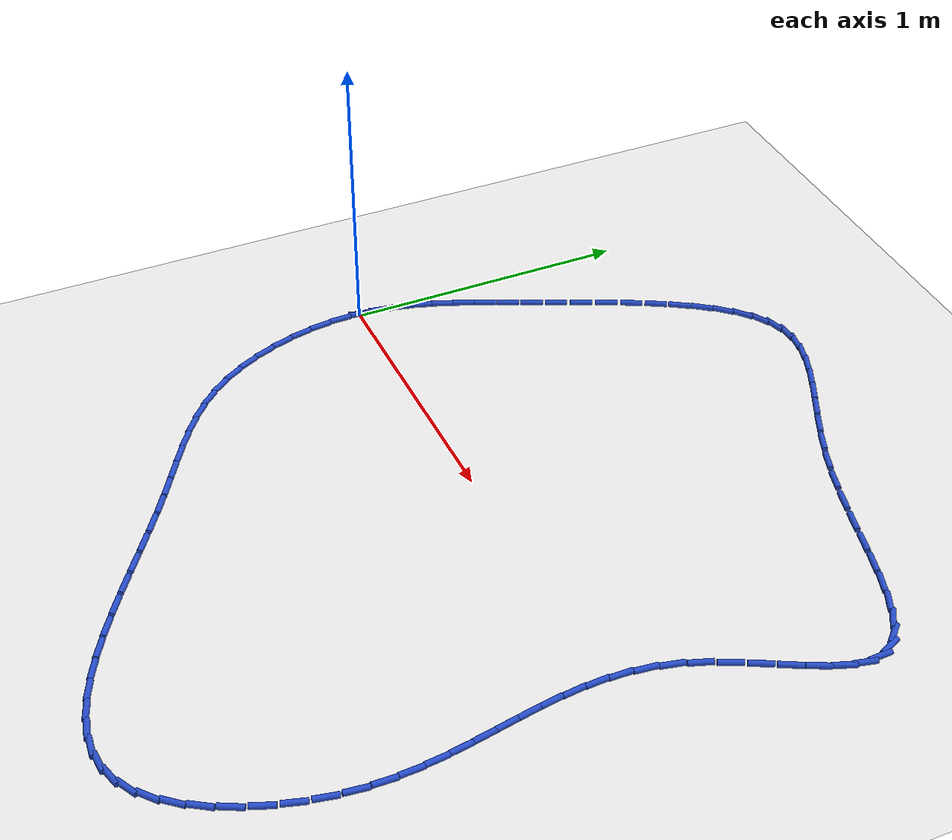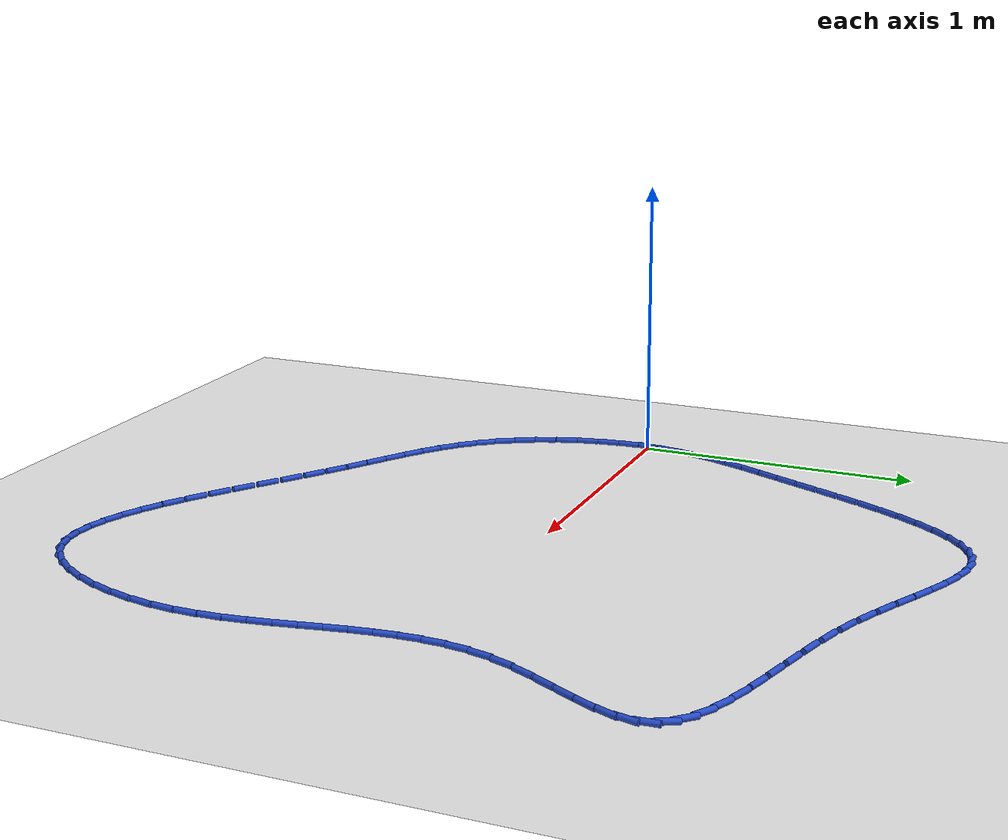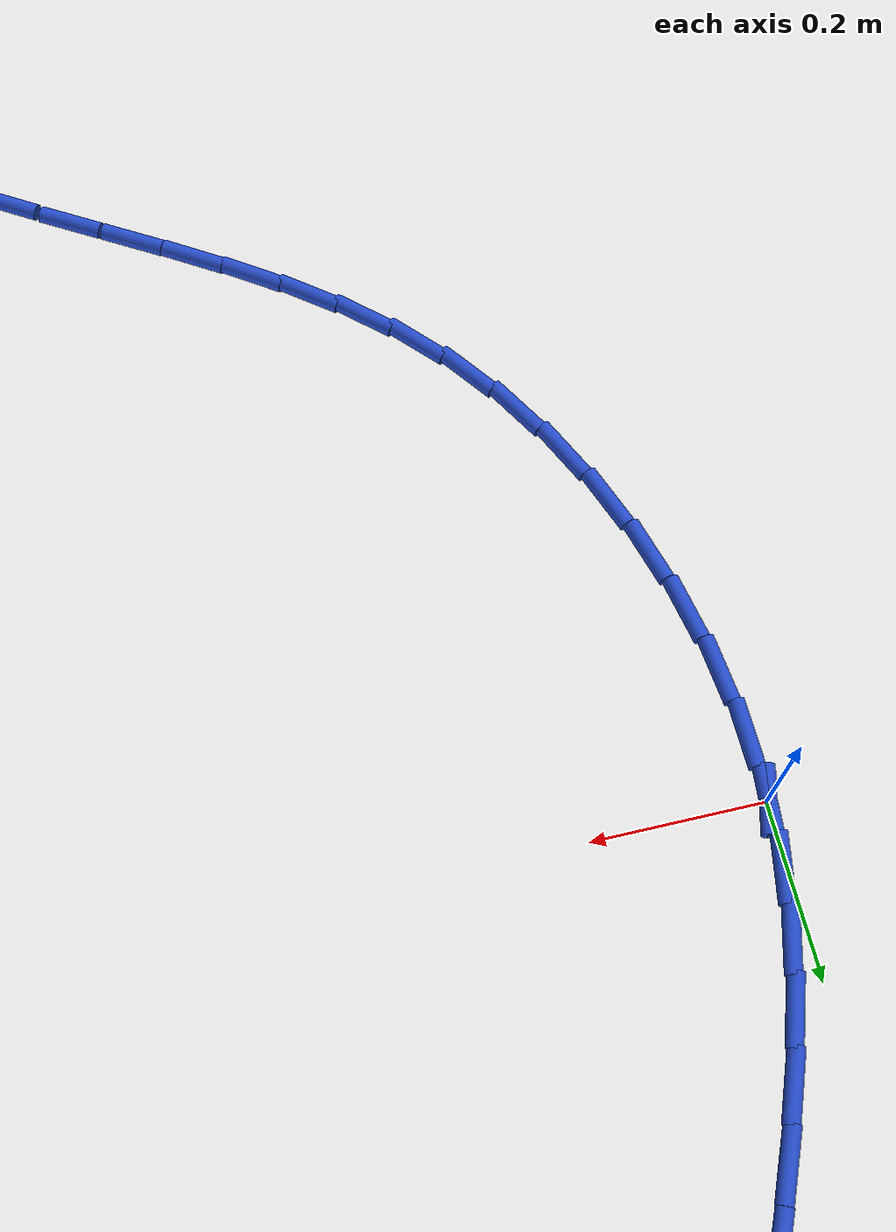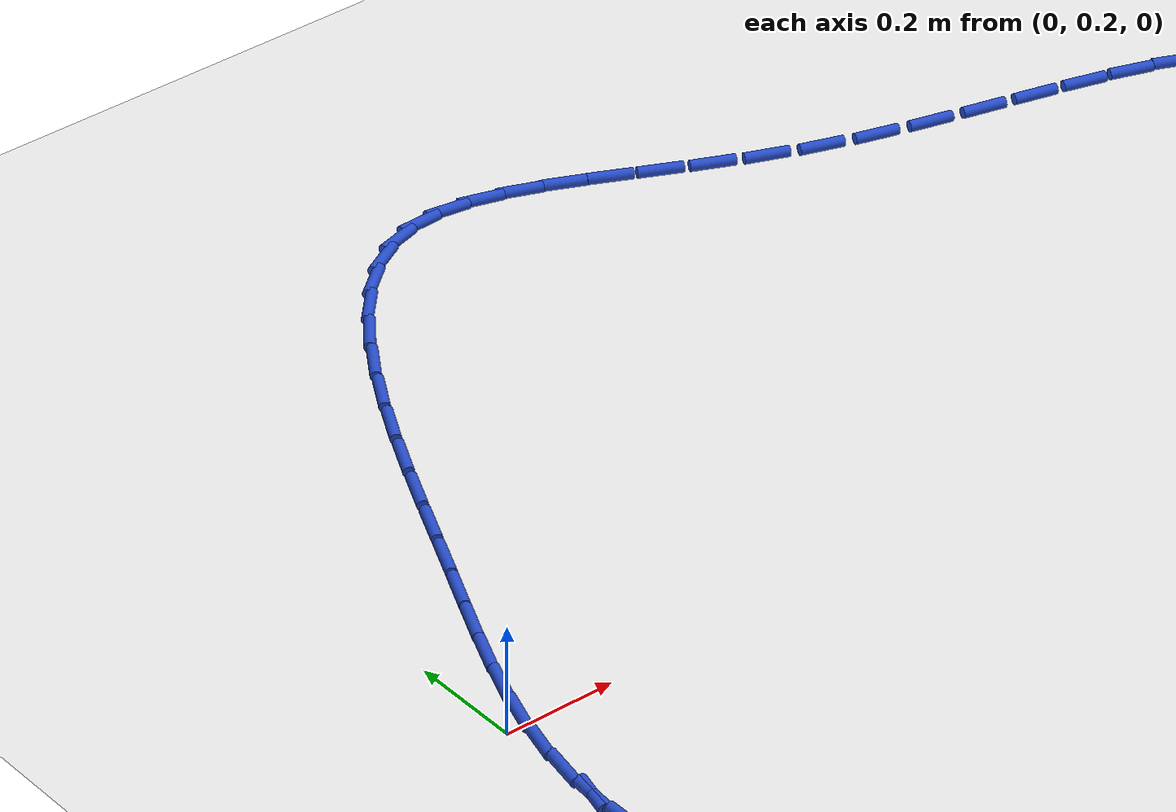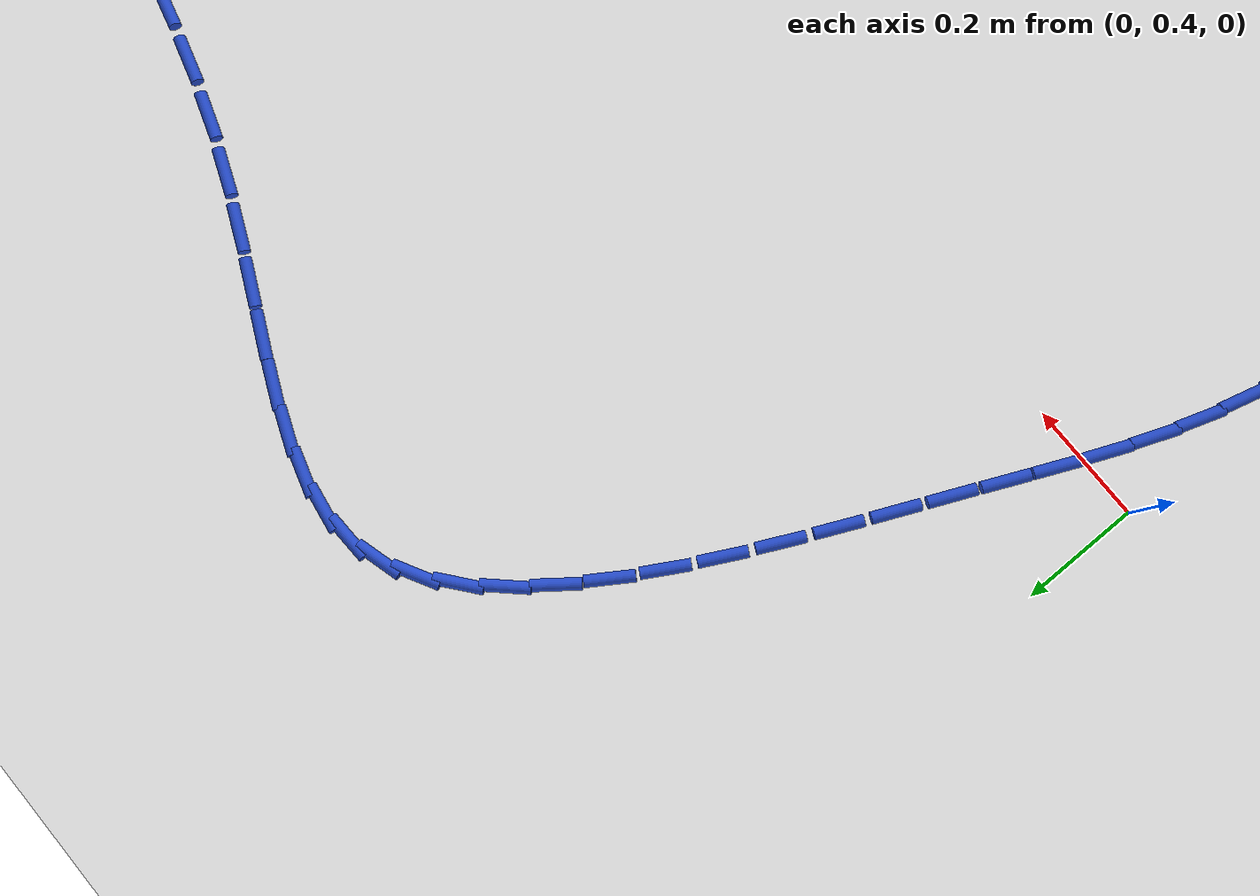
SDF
<sdf version="1.6">
 <world name="default">
  <light name="sun" type="directional">
   <pose>0 0 10 0 -0 0</pose>
   <diffuse>0.8 0.8 0.8 1</diffuse>
   <specular>0.2 0.2 0.2 1</specular>
   <attenuation>
    <range>1000</range>
    <constant>0.9</constant>
    <linear>0.01</linear>
    <quadratic>0.001</quadratic>
   </attenuation>
   <direction>-0.5 0.1 -0.9</direction>
  </light>
  <model name="ground_plane">
   <static>1</static>
   <link name="link">
    <collision name="collision">
     <geometry><plane><normal>0 0 1</normal><size>100 100</size></plane></geometry>
     <surface><friction><ode><mu>100</mu><mu2>50</mu2></ode></friction></surface>
    </collision>
    <visual name="visual">
     <cast_shadows>0</cast_shadows>
     <geometry><plane><normal>0 0 1</normal><size>100 100</size></plane></geometry>
     <material>
      <script><uri>file://media/materials/scripts/gazebo.material</uri><name>Gazebo/WhiteGlow</name></script>
     </material>
    </visual>
   </link>
  </model>
  <gravity>0 0 -9.8</gravity>
  <magnetic_field>6e-06 2.3e-05 -4.2e-05</magnetic_field>
  <atmosphere type="adiabatic"/>
  <physics name="default_physics" default="0" type="ode">
   <max_step_size>0.001</max_step_size>
   <real_time_factor>1</real_time_factor>
   <real_time_update_rate>1000</real_time_update_rate>
  </physics>
  <scene><ambient>0.4 0.4 0.4 1</ambient><background>0.7 0.7 0.7 1</background><shadows>1</shadows></scene>
  <spherical_coordinates>
   <surface_model>EARTH_WGS84</surface_model>
   <latitude_deg>0</latitude_deg>
   <longitude_deg>0</longitude_deg>
   <elevation>0</elevation>
   <heading_deg>0</heading_deg>
  </spherical_coordinates>
  <model name="line">
   <link name="link_0">
    <pose>1.1102230246251565e-16 6.938893903907228e-17 0.01 0 1.57 1.4840026987641841</pose>
    <collision name="collision">
     <geometry><cylinder><radius>0.01</radius><length>0.08</length></cylinder></geometry>
    </collision>
    <visual name="visual">
     <material>
      <script><name>Gazebo/Blue</name><uri>file://media/materials/scripts/gazebo.material</uri></script>
     </material>
     <geometry><cylinder><radius>0.01</radius><length>0.08</length></cylinder></geometry>
    </visual>
   </link>
   <link name="link_1">
    <pose>0.0065612767261310646 0.07540637412936897 0.01 0 1.57 1.3910932126338593</pose>
    <collision name="collision">
     <geometry><cylinder><radius>0.01</radius><length>0.08</length></cylinder></geometry>
    </collision>
    <visual name="visual">
     <material>
      <script><name>Gazebo/Blue</name><uri>file://media/materials/scripts/gazebo.material</uri></script>
     </material>
     <geometry><cylinder><radius>0.01</radius><length>0.08</length></cylinder></geometry>
    </visual>
   </link>
   <link name="link_2">
    <pose>0.01992770253627786 0.14898458428480577 0.01 0 1.57 1.3107194963642217</pose>
    <collision name="collision">
     <geometry><cylinder><radius>0.01</radius><length>0.08</length></cylinder></geometry>
    </collision>
    <visual name="visual">
     <material>
      <script><name>Gazebo/Blue</name><uri>file://media/materials/scripts/gazebo.material</uri></script>
     </material>
     <geometry><cylinder><radius>0.01</radius><length>0.08</length></cylinder></geometry>
    </visual>
   </link>
   <link name="link_3">
    <pose>0.039219704869234956 0.22148261527997679 0.01 0 1.57 1.2455239549286887</pose>
    <collision name="collision">
     <geometry><cylinder><radius>0.01</radius><length>0.08</length></cylinder></geometry>
    </collision>
    <visual name="visual">
     <material>
      <script><name>Gazebo/Blue</name><uri>file://media/materials/scripts/gazebo.material</uri></script>
     </material>
     <geometry><cylinder><radius>0.01</radius><length>0.08</length></cylinder></geometry>
    </visual>
   </link>
   <link name="link_4">
    <pose>0.06355771116379687 0.2936484519285486 0.01 0 1.57 1.1965793613125681</pose>
    <collision name="collision">
     <geometry><cylinder><radius>0.01</radius><length>0.08</length></cylinder></geometry>
    </collision>
    <visual name="visual">
     <material>
      <script><name>Gazebo/Blue</name><uri>file://media/materials/scripts/gazebo.material</uri></script>
     </material>
     <geometry><cylinder><radius>0.01</radius><length>0.08</length></cylinder></geometry>
    </visual>
   </link>
   <link name="link_5">
    <pose>0.09206214885875803 0.36623007904418764 0.01 0 1.57 1.1637742523363146</pose>
    <collision name="collision">
     <geometry><cylinder><radius>0.01</radius><length>0.08</length></cylinder></geometry>
    </collision>
    <visual name="visual">
     <material>
      <script><name>Gazebo/Blue</name><uri>file://media/materials/scripts/gazebo.material</uri></script>
     </material>
     <geometry><cylinder><radius>0.01</radius><length>0.08</length></cylinder></geometry>
    </visual>
   </link>
   <link name="link_6">
    <pose>0.12385344539291293 0.43997548144056015 0.01 0 1.57 1.1462634837776524</pose>
    <collision name="collision">
     <geometry><cylinder><radius>0.01</radius><length>0.08</length></cylinder></geometry>
    </collision>
    <visual name="visual">
     <material>
      <script><name>Gazebo/Blue</name><uri>file://media/materials/scripts/gazebo.material</uri></script>
     </material>
     <geometry><cylinder><radius>0.01</radius><length>0.08</length></cylinder></geometry>
    </visual>
   </link>
   <link name="link_7">
    <pose>0.15805202820505607 0.5156326439313328 0.01 0 1.57 1.1428165790425693</pose>
    <collision name="collision">
     <geometry><cylinder><radius>0.01</radius><length>0.08</length></cylinder></geometry>
    </collision>
    <visual name="visual">
     <material>
      <script><name>Gazebo/Blue</name><uri>file://media/materials/scripts/gazebo.material</uri></script>
     </material>
     <geometry><cylinder><radius>0.01</radius><length>0.08</length></cylinder></geometry>
    </visual>
   </link>
   <link name="link_8">
    <pose>0.193778406621377 0.5939493759564248 0.01 0 1.57 1.1475967246563983</pose>
    <collision name="collision">
     <geometry><cylinder><radius>0.01</radius><length>0.08</length></cylinder></geometry>
    </collision>
    <visual name="visual">
     <material>
      <script><name>Gazebo/Blue</name><uri>file://media/materials/scripts/gazebo.material</uri></script>
     </material>
     <geometry><cylinder><radius>0.01</radius><length>0.08</length></cylinder></geometry>
    </visual>
   </link>
   <link name="link_9">
    <pose>0.23037457820465468 0.6751991377354087 0.01 0 1.57 1.1460964105193343</pose>
    <collision name="collision">
     <geometry><cylinder><radius>0.01</radius><length>0.08</length></cylinder></geometry>
    </collision>
    <visual name="visual">
     <material>
      <script><name>Gazebo/Blue</name><uri>file://media/materials/scripts/gazebo.material</uri></script>
     </material>
     <geometry><cylinder><radius>0.01</radius><length>0.08</length></cylinder></geometry>
    </visual>
   </link>
   <link name="link_10">
    <pose>0.2678861140412166 0.7581485846232271 0.01 0 1.57 1.1359114285427192</pose>
    <collision name="collision">
     <geometry><cylinder><radius>0.01</radius><length>0.08</length></cylinder></geometry>
    </collision>
    <visual name="visual">
     <material>
      <script><name>Gazebo/Blue</name><uri>file://media/materials/scripts/gazebo.material</uri></script>
     </material>
     <geometry><cylinder><radius>0.01</radius><length>0.08</length></cylinder></geometry>
    </visual>
   </link>
   <link name="link_11">
    <pose>0.3064979698660056 0.8412658595101563 0.01 0 1.57 1.1167794317633055</pose>
    <collision name="collision">
     <geometry><cylinder><radius>0.01</radius><length>0.08</length></cylinder></geometry>
    </collision>
    <visual name="visual">
     <material>
      <script><name>Gazebo/Blue</name><uri>file://media/materials/scripts/gazebo.material</uri></script>
     </material>
     <geometry><cylinder><radius>0.01</radius><length>0.08</length></cylinder></geometry>
    </visual>
   </link>
   <link name="link_12">
    <pose>0.3463951014139641 0.9230191052864717 0.01 0 1.57 1.0876749596930095</pose>
    <collision name="collision">
     <geometry><cylinder><radius>0.01</radius><length>0.08</length></cylinder></geometry>
    </collision>
    <visual name="visual">
     <material>
      <script><name>Gazebo/Blue</name><uri>file://media/materials/scripts/gazebo.material</uri></script>
     </material>
     <geometry><cylinder><radius>0.01</radius><length>0.08</length></cylinder></geometry>
    </visual>
   </link>
   <link name="link_13">
    <pose>0.3877624644200351 1.0018764648424503 0.01 0 1.57 1.0466879118795012</pose>
    <collision name="collision">
     <geometry><cylinder><radius>0.01</radius><length>0.08</length></cylinder></geometry>
    </collision>
    <visual name="visual">
     <material>
      <script><name>Gazebo/Blue</name><uri>file://media/materials/scripts/gazebo.material</uri></script>
     </material>
     <geometry><cylinder><radius>0.01</radius><length>0.08</length></cylinder></geometry>
    </visual>
   </link>
   <link name="link_14">
    <pose>0.4307850146191612 1.0763060810683678 0.01 0 1.57 0.990762615278918</pose>
    <collision name="collision">
     <geometry><cylinder><radius>0.01</radius><length>0.08</length></cylinder></geometry>
    </collision>
    <visual name="visual">
     <material>
      <script><name>Gazebo/Blue</name><uri>file://media/materials/scripts/gazebo.material</uri></script>
     </material>
     <geometry><cylinder><radius>0.01</radius><length>0.08</length></cylinder></geometry>
    </visual>
   </link>
   <link name="link_15">
    <pose>0.4756477077462847 1.1447760968545002 0.01 0 1.57 0.9152943350271281</pose>
    <collision name="collision">
     <geometry><cylinder><radius>0.01</radius><length>0.08</length></cylinder></geometry>
    </collision>
    <visual name="visual">
     <material>
      <script><name>Gazebo/Blue</name><uri>file://media/materials/scripts/gazebo.material</uri></script>
     </material>
     <geometry><cylinder><radius>0.01</radius><length>0.08</length></cylinder></geometry>
    </visual>
   </link>
   <link name="link_16">
    <pose>0.5225354995363487 1.205754655091124 0.01 0 1.57 0.8136668311182295</pose>
    <collision name="collision">
     <geometry><cylinder><radius>0.01</radius><length>0.08</length></cylinder></geometry>
    </collision>
    <visual name="visual">
     <material>
      <script><name>Gazebo/Blue</name><uri>file://media/materials/scripts/gazebo.material</uri></script>
     </material>
     <geometry><cylinder><radius>0.01</radius><length>0.08</length></cylinder></geometry>
    </visual>
   </link>
   <link name="link_17">
    <pose>0.5716333457242957 1.257709898668515 0.01 0 1.57 0.6771730336964219</pose>
    <collision name="collision">
     <geometry><cylinder><radius>0.01</radius><length>0.08</length></cylinder></geometry>
    </collision>
    <visual name="visual">
     <material>
      <script><name>Gazebo/Blue</name><uri>file://media/materials/scripts/gazebo.material</uri></script>
     </material>
     <geometry><cylinder><radius>0.01</radius><length>0.08</length></cylinder></geometry>
    </visual>
   </link>
   <link name="link_18">
    <pose>0.6231262020450685 1.2991099704769495 0.01 0 1.57 0.49676009913317504</pose>
    <collision name="collision">
     <geometry><cylinder><radius>0.01</radius><length>0.08</length></cylinder></geometry>
    </collision>
    <visual name="visual">
     <material>
      <script><name>Gazebo/Blue</name><uri>file://media/materials/scripts/gazebo.material</uri></script>
     </material>
     <geometry><cylinder><radius>0.01</radius><length>0.08</length></cylinder></geometry>
    </visual>
   </link>
   <link name="link_19">
    <pose>0.6771990242336094 1.3284230134067032 0.01 0 1.57 0.26969403996866487</pose>
    <collision name="collision">
     <geometry><cylinder><radius>0.01</radius><length>0.08</length></cylinder></geometry>
    </collision>
    <visual name="visual">
     <material>
      <script><name>Gazebo/Blue</name><uri>file://media/materials/scripts/gazebo.material</uri></script>
     </material>
     <geometry><cylinder><radius>0.01</radius><length>0.08</length></cylinder></geometry>
    </visual>
   </link>
   <link name="link_20">
    <pose>0.7340367159800684 1.344134586551614 0.01 0 1.57 0.031233956064412875</pose>
    <collision name="collision">
     <geometry><cylinder><radius>0.01</radius><length>0.08</length></cylinder></geometry>
    </collision>
    <visual name="visual">
     <material>
      <script><name>Gazebo/Blue</name><uri>file://media/materials/scripts/gazebo.material</uri></script>
     </material>
     <geometry><cylinder><radius>0.01</radius><length>0.08</length></cylinder></geometry>
    </visual>
   </link>
   <link name="link_21">
    <pose>0.7938203791871837 1.346002474313305 0.01 0 1.57 -0.1592478330223512</pose>
    <collision name="collision">
     <geometry><cylinder><radius>0.01</radius><length>0.08</length></cylinder></geometry>
    </collision>
    <visual name="visual">
     <material>
      <script><name>Gazebo/Blue</name><uri>file://media/materials/scripts/gazebo.material</uri></script>
     </material>
     <geometry><cylinder><radius>0.01</radius><length>0.08</length></cylinder></geometry>
    </visual>
   </link>
   <link name="link_22">
    <pose>0.8567247952895054 1.3358995345368287 0.01 0 1.57 -0.29341442193496825</pose>
    <collision name="collision">
     <geometry><cylinder><radius>0.01</radius><length>0.08</length></cylinder></geometry>
    </collision>
    <visual name="visual">
     <material>
      <script><name>Gazebo/Blue</name><uri>file://media/materials/scripts/gazebo.material</uri></script>
     </material>
     <geometry><cylinder><radius>0.01</radius><length>0.08</length></cylinder></geometry>
    </visual>
   </link>
   <link name="link_23">
    <pose>0.9229241487699523 1.3158983882021544 0.01 0 1.57 -0.3800031761362196</pose>
    <collision name="collision">
     <geometry><cylinder><radius>0.01</radius><length>0.08</length></cylinder></geometry>
    </collision>
    <visual name="visual">
     <material>
      <script><name>Gazebo/Blue</name><uri>file://media/materials/scripts/gazebo.material</uri></script>
     </material>
     <geometry><cylinder><radius>0.01</radius><length>0.08</length></cylinder></geometry>
    </visual>
   </link>
   <link name="link_24">
    <pose>0.9925926241114434 1.2880716562892527 0.01 0 1.57 -0.4295194813540658</pose>
    <collision name="collision">
     <geometry><cylinder><radius>0.01</radius><length>0.08</length></cylinder></geometry>
    </collision>
    <visual name="visual">
     <material>
      <script><name>Gazebo/Blue</name><uri>file://media/materials/scripts/gazebo.material</uri></script>
     </material>
     <geometry><cylinder><radius>0.01</radius><length>0.08</length></cylinder></geometry>
    </visual>
   </link>
   <link name="link_25">
    <pose>1.0659044057968987 1.254491959778094 0.01 0 1.57 -0.4500247491477668</pose>
    <collision name="collision">
     <geometry><cylinder><radius>0.01</radius><length>0.08</length></cylinder></geometry>
    </collision>
    <visual name="visual">
     <material>
      <script><name>Gazebo/Blue</name><uri>file://media/materials/scripts/gazebo.material</uri></script>
     </material>
     <geometry><cylinder><radius>0.01</radius><length>0.08</length></cylinder></geometry>
    </visual>
   </link>
   <link name="link_26">
    <pose>1.1430336783092372 1.2172319196486479 0.01 0 1.57 -0.44681548573233154</pose>
    <collision name="collision">
     <geometry><cylinder><radius>0.01</radius><length>0.08</length></cylinder></geometry>
    </collision>
    <visual name="visual">
     <material>
      <script><name>Gazebo/Blue</name><uri>file://media/materials/scripts/gazebo.material</uri></script>
     </material>
     <geometry><cylinder><radius>0.01</radius><length>0.08</length></cylinder></geometry>
    </visual>
   </link>
   <link name="link_27">
    <pose>1.2241546261313778 1.1783641568808845 0.01 0 1.57 -0.4230859768366523</pose>
    <collision name="collision">
     <geometry><cylinder><radius>0.01</radius><length>0.08</length></cylinder></geometry>
    </collision>
    <visual name="visual">
     <material>
      <script><name>Gazebo/Blue</name><uri>file://media/materials/scripts/gazebo.material</uri></script>
     </material>
     <geometry><cylinder><radius>0.01</radius><length>0.08</length></cylinder></geometry>
    </visual>
   </link>
   <link name="link_28">
    <pose>1.3094414337462397 1.1399612924547735 0.01 0 1.57 -0.3806468400172062</pose>
    <collision name="collision">
     <geometry><cylinder><radius>0.01</radius><length>0.08</length></cylinder></geometry>
    </collision>
    <visual name="visual">
     <material>
      <script><name>Gazebo/Blue</name><uri>file://media/materials/scripts/gazebo.material</uri></script>
     </material>
     <geometry><cylinder><radius>0.01</radius><length>0.08</length></cylinder></geometry>
    </visual>
   </link>
   <link name="link_29">
    <pose>1.399068285636742 1.1040959473502856 0.01 0 1.57 -0.32430712067289386</pose>
    <collision name="collision">
     <geometry><cylinder><radius>0.01</radius><length>0.08</length></cylinder></geometry>
    </collision>
    <visual name="visual">
     <material>
      <script><name>Gazebo/Blue</name><uri>file://media/materials/scripts/gazebo.material</uri></script>
     </material>
     <geometry><cylinder><radius>0.01</radius><length>0.08</length></cylinder></geometry>
    </visual>
   </link>
   <link name="link_30">
    <pose>1.4929800086863931 1.072525043171631 0.01 0 1.57 -0.2784571306595874</pose>
    <collision name="collision">
     <geometry><cylinder><radius>0.01</radius><length>0.08</length></cylinder></geometry>
    </collision>
    <visual name="visual">
     <material>
      <script><name>Gazebo/Blue</name><uri>file://media/materials/scripts/gazebo.material</uri></script>
     </material>
     <geometry><cylinder><radius>0.01</radius><length>0.08</length></cylinder></geometry>
    </visual>
   </link>
   <link name="link_31">
    <pose>1.5895949137188752 1.044904327773343 0.01 0 1.57 -0.25073260515543316</pose>
    <collision name="collision">
     <geometry><cylinder><radius>0.01</radius><length>0.08</length></cylinder></geometry>
    </collision>
    <visual name="visual">
     <material>
      <script><name>Gazebo/Blue</name><uri>file://media/materials/scripts/gazebo.material</uri></script>
     </material>
     <geometry><cylinder><radius>0.01</radius><length>0.08</length></cylinder></geometry>
    </visual>
   </link>
   <link name="link_32">
    <pose>1.6867079361926132 1.0200315036947747 0.01 0 1.57 -0.23982957859412735</pose>
    <collision name="collision">
     <geometry><cylinder><radius>0.01</radius><length>0.08</length></cylinder></geometry>
    </collision>
    <visual name="visual">
     <material>
      <script><name>Gazebo/Blue</name><uri>file://media/materials/scripts/gazebo.material</uri></script>
     </material>
     <geometry><cylinder><radius>0.01</radius><length>0.08</length></cylinder></geometry>
    </visual>
   </link>
   <link name="link_33">
    <pose>1.782112162234944 0.9967017279626342 0.01 0 1.57 -0.24620702363934596</pose>
    <collision name="collision">
     <geometry><cylinder><radius>0.01</radius><length>0.08</length></cylinder></geometry>
    </collision>
    <visual name="visual">
     <material>
      <script><name>Gazebo/Blue</name><uri>file://media/materials/scripts/gazebo.material</uri></script>
     </material>
     <geometry><cylinder><radius>0.01</radius><length>0.08</length></cylinder></geometry>
    </visual>
   </link>
   <link name="link_34">
    <pose>1.873600677973205 0.9737101576036294 0.01 0 1.57 -0.27252805663344803</pose>
    <collision name="collision">
     <geometry><cylinder><radius>0.01</radius><length>0.08</length></cylinder></geometry>
    </collision>
    <visual name="visual">
     <material>
      <script><name>Gazebo/Blue</name><uri>file://media/materials/scripts/gazebo.material</uri></script>
     </material>
     <geometry><cylinder><radius>0.01</radius><length>0.08</length></cylinder></geometry>
    </visual>
   </link>
   <link name="link_35">
    <pose>1.958966569534733 0.9498519496444675 0.01 0 1.57 -0.3246789452980387</pose>
    <collision name="collision">
     <geometry><cylinder><radius>0.01</radius><length>0.08</length></cylinder></geometry>
    </collision>
    <visual name="visual">
     <material>
      <script><name>Gazebo/Blue</name><uri>file://media/materials/scripts/gazebo.material</uri></script>
     </material>
     <geometry><cylinder><radius>0.01</radius><length>0.08</length></cylinder></geometry>
    </visual>
   </link>
   <link name="link_36">
    <pose>2.0360029230468646 0.9239222611118563 0.01 0 1.57 -0.4138270479916185</pose>
    <collision name="collision">
     <geometry><cylinder><radius>0.01</radius><length>0.08</length></cylinder></geometry>
    </collision>
    <visual name="visual">
     <material>
      <script><name>Gazebo/Blue</name><uri>file://media/materials/scripts/gazebo.material</uri></script>
     </material>
     <geometry><cylinder><radius>0.01</radius><length>0.08</length></cylinder></geometry>
    </visual>
   </link>
   <link name="link_37">
    <pose>2.1025028246369377 0.8947162490325029 0.01 0 1.57 -0.5597935736483688</pose>
    <collision name="collision">
     <geometry><cylinder><radius>0.01</radius><length>0.08</length></cylinder></geometry>
    </collision>
    <visual name="visual">
     <material>
      <script><name>Gazebo/Blue</name><uri>file://media/materials/scripts/gazebo.material</uri></script>
     </material>
     <geometry><cylinder><radius>0.01</radius><length>0.08</length></cylinder></geometry>
    </visual>
   </link>
   <link name="link_38">
    <pose>2.15625936043229 0.8610290704331159 0.01 0 1.57 -0.7926497118447267</pose>
    <collision name="collision">
     <geometry><cylinder><radius>0.01</radius><length>0.08</length></cylinder></geometry>
    </collision>
    <visual name="visual">
     <material>
      <script><name>Gazebo/Blue</name><uri>file://media/materials/scripts/gazebo.material</uri></script>
     </material>
     <geometry><cylinder><radius>0.01</radius><length>0.08</length></cylinder></geometry>
    </visual>
   </link>
   <link name="link_39">
    <pose>2.1950656165602576 0.8216558823404022 0.01 0 1.57 -1.1331193144336114</pose>
    <collision name="collision">
     <geometry><cylinder><radius>0.01</radius><length>0.08</length></cylinder></geometry>
    </collision>
    <visual name="visual">
     <material>
      <script><name>Gazebo/Blue</name><uri>file://media/materials/scripts/gazebo.material</uri></script>
     </material>
     <geometry><cylinder><radius>0.01</radius><length>0.08</length></cylinder></geometry>
    </visual>
   </link>
   <link name="link_40">
    <pose>2.2167146791481778 0.7753918417810693 0.01 0 1.57 -1.5241682310525817</pose>
    <collision name="collision">
     <geometry><cylinder><radius>0.01</radius><length>0.08</length></cylinder></geometry>
    </collision>
    <visual name="visual">
     <material>
      <script><name>Gazebo/Blue</name><uri>file://media/materials/scripts/gazebo.material</uri></script>
     </material>
     <geometry><cylinder><radius>0.01</radius><length>0.08</length></cylinder></geometry>
    </visual>
   </link>
   <link name="link_41">
    <pose>2.219246687905336 0.7211289893707372 0.01 0 1.57 1.3340941309854362</pose>
    <collision name="collision">
     <geometry><cylinder><radius>0.01</radius><length>0.08</length></cylinder></geometry>
    </collision>
    <visual name="visual">
     <material>
      <script><name>Gazebo/Blue</name><uri>file://media/materials/scripts/gazebo.material</uri></script>
     </material>
     <geometry><cylinder><radius>0.01</radius><length>0.08</length></cylinder></geometry>
    </visual>
   </link>
   <link name="link_42">
    <pose>2.204300864848812 0.6591707680937673 0.01 0 1.57 1.1808601657375801</pose>
    <collision name="collision">
     <geometry><cylinder><radius>0.01</radius><length>0.08</length></cylinder></geometry>
    </collision>
    <visual name="visual">
     <material>
      <script><name>Gazebo/Blue</name><uri>file://media/materials/scripts/gazebo.material</uri></script>
     </material>
     <geometry><cylinder><radius>0.01</radius><length>0.08</length></cylinder></geometry>
    </visual>
   </link>
   <link name="link_43">
    <pose>2.1762379428699603 0.5908878782423602 0.01 0 1.57 1.1055457414921</pose>
    <collision name="collision">
     <geometry><cylinder><radius>0.01</radius><length>0.08</length></cylinder></geometry>
    </collision>
    <visual name="visual">
     <material>
      <script><name>Gazebo/Blue</name><uri>file://media/materials/scripts/gazebo.material</uri></script>
     </material>
     <geometry><cylinder><radius>0.01</radius><length>0.08</length></cylinder></geometry>
    </visual>
   </link>
   <link name="link_44">
    <pose>2.1394858850123217 0.5176773848283683 0.01 0 1.57 1.0799803025614971</pose>
    <collision name="collision">
     <geometry><cylinder><radius>0.01</radius><length>0.08</length></cylinder></geometry>
    </collision>
    <visual name="visual">
     <material>
      <script><name>Gazebo/Blue</name><uri>file://media/materials/scripts/gazebo.material</uri></script>
     </material>
     <geometry><cylinder><radius>0.01</radius><length>0.08</length></cylinder></geometry>
    </visual>
   </link>
   <link name="link_45">
    <pose>2.098472654319437 0.44093635286364397 0.01 0 1.57 1.092958129537968</pose>
    <collision name="collision">
     <geometry><cylinder><radius>0.01</radius><length>0.08</length></cylinder></geometry>
    </collision>
    <visual name="visual">
     <material>
      <script><name>Gazebo/Blue</name><uri>file://media/materials/scripts/gazebo.material</uri></script>
     </material>
     <geometry><cylinder><radius>0.01</radius><length>0.08</length></cylinder></geometry>
    </visual>
   </link>
   <link name="link_46">
    <pose>2.057626213834844 0.36206184736003844 0.01 0 1.57 1.1434933333574728</pose>
    <collision name="collision">
     <geometry><cylinder><radius>0.01</radius><length>0.08</length></cylinder></geometry>
    </collision>
    <visual name="visual">
     <material>
      <script><name>Gazebo/Blue</name><uri>file://media/materials/scripts/gazebo.material</uri></script>
     </material>
     <geometry><cylinder><radius>0.01</radius><length>0.08</length></cylinder></geometry>
    </visual>
   </link>
   <link name="link_47">
    <pose>2.0213745266020853 0.2824509333294039 0.01 0 1.57 1.2364369242555173</pose>
    <collision name="collision">
     <geometry><cylinder><radius>0.01</radius><length>0.08</length></cylinder></geometry>
    </collision>
    <visual name="visual">
     <material>
      <script><name>Gazebo/Blue</name><uri>file://media/materials/scripts/gazebo.material</uri></script>
     </material>
     <geometry><cylinder><radius>0.01</radius><length>0.08</length></cylinder></geometry>
    </visual>
   </link>
   <link name="link_48">
    <pose>1.9939255067029407 0.2034389029718168 0.01 0 1.57 1.3489588092741078</pose>
    <collision name="collision">
     <geometry><cylinder><radius>0.01</radius><length>0.08</length></cylinder></geometry>
    </collision>
    <visual name="visual">
     <material>
      <script><name>Gazebo/Blue</name><uri>file://media/materials/scripts/gazebo.material</uri></script>
     </material>
     <geometry><cylinder><radius>0.01</radius><length>0.08</length></cylinder></geometry>
    </visual>
   </link>
   <link name="link_49">
    <pose>1.9763414551703582 0.1254780024541732 0.01 0 1.57 1.4545486647290924</pose>
    <collision name="collision">
     <geometry><cylinder><radius>0.01</radius><length>0.08</length></cylinder></geometry>
    </collision>
    <visual name="visual">
     <material>
      <script><name>Gazebo/Blue</name><uri>file://media/materials/scripts/gazebo.material</uri></script>
     </material>
     <geometry><cylinder><radius>0.01</radius><length>0.08</length></cylinder></geometry>
    </visual>
   </link>
   <link name="link_50">
    <pose>1.9673362075061707 0.04836120957847245 0.01 0 1.57 1.5476756034725974</pose>
    <collision name="collision">
     <geometry><cylinder><radius>0.01</radius><length>0.08</length></cylinder></geometry>
    </collision>
    <visual name="visual">
     <material>
      <script><name>Gazebo/Blue</name><uri>file://media/materials/scripts/gazebo.material</uri></script>
     </material>
     <geometry><cylinder><radius>0.01</radius><length>0.08</length></cylinder></geometry>
    </visual>
   </link>
   <link name="link_51">
    <pose>1.965567260464489 -0.0281343134373771 0.01 0 1.57 -1.5166442229137096</pose>
    <collision name="collision">
     <geometry><cylinder><radius>0.01</radius><length>0.08</length></cylinder></geometry>
    </collision>
    <visual name="visual">
     <material>
      <script><name>Gazebo/Blue</name><uri>file://media/materials/scripts/gazebo.material</uri></script>
     </material>
     <geometry><cylinder><radius>0.01</radius><length>0.08</length></cylinder></geometry>
    </visual>
   </link>
   <link name="link_52">
    <pose>1.9696921107994247 -0.10423140437546685 0.01 0 1.57 -1.4570120947648812</pose>
    <collision name="collision">
     <geometry><cylinder><radius>0.01</radius><length>0.08</length></cylinder></geometry>
    </collision>
    <visual name="visual">
     <material>
      <script><name>Gazebo/Blue</name><uri>file://media/materials/scripts/gazebo.material</uri></script>
     </material>
     <geometry><cylinder><radius>0.01</radius><length>0.08</length></cylinder></geometry>
    </visual>
   </link>
   <link name="link_53">
    <pose>1.9783682552650894 -0.18015290101788844 0.01 0 1.57 -1.4156091632811003</pose>
    <collision name="collision">
     <geometry><cylinder><radius>0.01</radius><length>0.08</length></cylinder></geometry>
    </collision>
    <visual name="visual">
     <material>
      <script><name>Gazebo/Blue</name><uri>file://media/materials/scripts/gazebo.material</uri></script>
     </material>
     <geometry><cylinder><radius>0.01</radius><length>0.08</length></cylinder></geometry>
    </visual>
   </link>
   <link name="link_54">
    <pose>1.9902531906155947 -0.25612164114673336 0.01 0 1.57 -1.3923446833546753</pose>
    <collision name="collision">
     <geometry><cylinder><radius>0.01</radius><length>0.08</length></cylinder></geometry>
    </collision>
    <visual name="visual">
     <material>
      <script><name>Gazebo/Blue</name><uri>file://media/materials/scripts/gazebo.material</uri></script>
     </material>
     <geometry><cylinder><radius>0.01</radius><length>0.08</length></cylinder></geometry>
    </visual>
   </link>
   <link name="link_55">
    <pose>2.0040044136050525 -0.3323604625440932 0.01 0 1.57 -1.3868612501474193</pose>
    <collision name="collision">
     <geometry><cylinder><radius>0.01</radius><length>0.08</length></cylinder></geometry>
    </collision>
    <visual name="visual">
     <material>
      <script><name>Gazebo/Blue</name><uri>file://media/materials/scripts/gazebo.material</uri></script>
     </material>
     <geometry><cylinder><radius>0.01</radius><length>0.08</length></cylinder></geometry>
    </visual>
   </link>
   <link name="link_56">
    <pose>2.018279420987574 -0.4090922029920594 0.01 0 1.57 -1.3987664572372656</pose>
    <collision name="collision">
     <geometry><cylinder><radius>0.01</radius><length>0.08</length></cylinder></geometry>
    </collision>
    <visual name="visual">
     <material>
      <script><name>Gazebo/Blue</name><uri>file://media/materials/scripts/gazebo.material</uri></script>
     </material>
     <geometry><cylinder><radius>0.01</radius><length>0.08</length></cylinder></geometry>
    </visual>
   </link>
   <link name="link_57">
    <pose>2.0317357095172692 -0.4865397002727234 0.01 0 1.57 -1.4276861015359927</pose>
    <collision name="collision">
     <geometry><cylinder><radius>0.01</radius><length>0.08</length></cylinder></geometry>
    </collision>
    <visual name="visual">
     <material>
      <script><name>Gazebo/Blue</name><uri>file://media/materials/scripts/gazebo.material</uri></script>
     </material>
     <geometry><cylinder><radius>0.01</radius><length>0.08</length></cylinder></geometry>
    </visual>
   </link>
   <link name="link_58">
    <pose>2.0430307759482518 -0.5649257921681761 0.01 0 1.57 -1.4731620066247766</pose>
    <collision name="collision">
     <geometry><cylinder><radius>0.01</radius><length>0.08</length></cylinder></geometry>
    </collision>
    <visual name="visual">
     <material>
      <script><name>Gazebo/Blue</name><uri>file://media/materials/scripts/gazebo.material</uri></script>
     </material>
     <geometry><cylinder><radius>0.01</radius><length>0.08</length></cylinder></geometry>
    </visual>
   </link>
   <link name="link_59">
    <pose>2.0508221170346324 -0.6444733164605103 0.01 0 1.57 -1.5344223215115775</pose>
    <collision name="collision">
     <geometry><cylinder><radius>0.01</radius><length>0.08</length></cylinder></geometry>
    </collision>
    <visual name="visual">
     <material>
      <script><name>Gazebo/Blue</name><uri>file://media/materials/scripts/gazebo.material</uri></script>
     </material>
     <geometry><cylinder><radius>0.01</radius><length>0.08</length></cylinder></geometry>
    </visual>
   </link>
   <link name="link_60">
    <pose>2.0537672295305223 -0.7254051109318174 0.01 0 1.57 1.5315184706308456</pose>
    <collision name="collision">
     <geometry><cylinder><radius>0.01</radius><length>0.08</length></cylinder></geometry>
    </collision>
    <visual name="visual">
     <material>
      <script><name>Gazebo/Blue</name><uri>file://media/materials/scripts/gazebo.material</uri></script>
     </material>
     <geometry><cylinder><radius>0.01</radius><length>0.08</length></cylinder></geometry>
    </visual>
   </link>
   <link name="link_61">
    <pose>2.0505236101900333 -0.8079440133641884 0.01 0 1.57 1.4449320506592638</pose>
    <collision name="collision">
     <geometry><cylinder><radius>0.01</radius><length>0.08</length></cylinder></geometry>
    </collision>
    <visual name="visual">
     <material>
      <script><name>Gazebo/Blue</name><uri>file://media/materials/scripts/gazebo.material</uri></script>
     </material>
     <geometry><cylinder><radius>0.01</radius><length>0.08</length></cylinder></geometry>
    </visual>
   </link>
   <link name="link_62">
    <pose>2.03986668831402 -0.8921663811395046 0.01 0 1.57 1.3590202190430423</pose>
    <collision name="collision">
     <geometry><cylinder><radius>0.01</radius><length>0.08</length></cylinder></geometry>
    </collision>
    <visual name="visual">
     <material>
      <script><name>Gazebo/Blue</name><uri>file://media/materials/scripts/gazebo.material</uri></script>
     </material>
     <geometry><cylinder><radius>0.01</radius><length>0.08</length></cylinder></geometry>
    </visual>
   </link>
   <link name="link_63">
    <pose>2.021675137847446 -0.9767782652953689 0.01 0 1.57 1.2753920764026507</pose>
    <collision name="collision">
     <geometry><cylinder><radius>0.01</radius><length>0.08</length></cylinder></geometry>
    </collision>
    <visual name="visual">
     <material>
      <script><name>Gazebo/Blue</name><uri>file://media/materials/scripts/gazebo.material</uri></script>
     </material>
     <geometry><cylinder><radius>0.01</radius><length>0.08</length></cylinder></geometry>
    </visual>
   </link>
   <link name="link_64">
    <pose>1.99642996911519 -1.0597375733209946 0.01 0 1.57 1.1891065321358625</pose>
    <collision name="collision">
     <geometry><cylinder><radius>0.01</radius><length>0.08</length></cylinder></geometry>
    </collision>
    <visual name="visual">
     <material>
      <script><name>Gazebo/Blue</name><uri>file://media/materials/scripts/gazebo.material</uri></script>
     </material>
     <geometry><cylinder><radius>0.01</radius><length>0.08</length></cylinder></geometry>
    </visual>
   </link>
   <link name="link_65">
    <pose>1.9646182898889513 -1.138994639253862 0.01 0 1.57 1.0948346360506274</pose>
    <collision name="collision">
     <geometry><cylinder><radius>0.01</radius><length>0.08</length></cylinder></geometry>
    </collision>
    <visual name="visual">
     <material>
      <script><name>Gazebo/Blue</name><uri>file://media/materials/scripts/gazebo.material</uri></script>
     </material>
     <geometry><cylinder><radius>0.01</radius><length>0.08</length></cylinder></geometry>
    </visual>
   </link>
   <link name="link_66">
    <pose>1.9267272079404272 -1.212499797131452 0.01 0 1.57 0.9861626397700094</pose>
    <collision name="collision">
     <geometry><cylinder><radius>0.01</radius><length>0.08</length></cylinder></geometry>
    </collision>
    <visual name="visual">
     <material>
      <script><name>Gazebo/Blue</name><uri>file://media/materials/scripts/gazebo.material</uri></script>
     </material>
     <geometry><cylinder><radius>0.01</radius><length>0.08</length></cylinder></geometry>
    </visual>
   </link>
   <link name="link_67">
    <pose>1.8832438310413167 -1.2782033809912443 0.01 0 1.57 0.8548355320270011</pose>
    <collision name="collision">
     <geometry><cylinder><radius>0.01</radius><length>0.08</length></cylinder></geometry>
    </collision>
    <visual name="visual">
     <material>
      <script><name>Gazebo/Blue</name><uri>file://media/materials/scripts/gazebo.material</uri></script>
     </material>
     <geometry><cylinder><radius>0.01</radius><length>0.08</length></cylinder></geometry>
    </visual>
   </link>
   <link name="link_68">
    <pose>1.8346552669633183 -1.3340557248707205 0.01 0 1.57 0.6904254967649507</pose>
    <collision name="collision">
     <geometry><cylinder><radius>0.01</radius><length>0.08</length></cylinder></geometry>
    </collision>
    <visual name="visual">
     <material>
      <script><name>Gazebo/Blue</name><uri>file://media/materials/scripts/gazebo.material</uri></script>
     </material>
     <geometry><cylinder><radius>0.01</radius><length>0.08</length></cylinder></geometry>
    </visual>
   </link>
   <link name="link_69">
    <pose>1.7814486234781297 -1.3780071628073602 0.01 0 1.57 0.4847598591663112</pose>
    <collision name="collision">
     <geometry><cylinder><radius>0.01</radius><length>0.08</length></cylinder></geometry>
    </collision>
    <visual name="visual">
     <material>
      <script><name>Gazebo/Blue</name><uri>file://media/materials/scripts/gazebo.material</uri></script>
     </material>
     <geometry><cylinder><radius>0.01</radius><length>0.08</length></cylinder></geometry>
    </visual>
   </link>
   <link name="link_70">
    <pose>1.724104324468671 -1.408209021379515 0.01 0 1.57 0.26487798783269895</pose>
    <collision name="collision">
     <geometry><cylinder><radius>0.01</radius><length>0.08</length></cylinder></geometry>
    </collision>
    <visual name="visual">
     <material>
      <script><name>Gazebo/Blue</name><uri>file://media/materials/scripts/gazebo.material</uri></script>
     </material>
     <geometry><cylinder><radius>0.01</radius><length>0.08</length></cylinder></geometry>
    </visual>
   </link>
   <link name="link_71">
    <pose>1.66303758716975 -1.4247734691717797 0.01 0 1.57 0.06428053641674043</pose>
    <collision name="collision">
     <geometry><cylinder><radius>0.01</radius><length>0.08</length></cylinder></geometry>
    </collision>
    <visual name="visual">
     <material>
      <script><name>Gazebo/Blue</name><uri>file://media/materials/scripts/gazebo.material</uri></script>
     </material>
     <geometry><cylinder><radius>0.01</radius><length>0.08</length></cylinder></geometry>
    </visual>
   </link>
   <link name="link_72">
    <pose>1.598626820667942 -1.4289195398711079 0.01 0 1.57 -0.10412077861485931</pose>
    <collision name="collision">
     <geometry><cylinder><radius>0.01</radius><length>0.08</length></cylinder></geometry>
    </collision>
    <visual name="visual">
     <material>
      <script><name>Gazebo/Blue</name><uri>file://media/materials/scripts/gazebo.material</uri></script>
     </material>
     <geometry><cylinder><radius>0.01</radius><length>0.08</length></cylinder></geometry>
    </visual>
   </link>
   <link name="link_73">
    <pose>1.5312500188400675 -1.4218787530189922 0.01 0 1.57 -0.238307692011341</pose>
    <collision name="collision">
     <geometry><cylinder><radius>0.01</radius><length>0.08</length></cylinder></geometry>
    </collision>
    <visual name="visual">
     <material>
      <script><name>Gazebo/Blue</name><uri>file://media/materials/scripts/gazebo.material</uri></script>
     </material>
     <geometry><cylinder><radius>0.01</radius><length>0.08</length></cylinder></geometry>
    </visual>
   </link>
   <link name="link_74">
    <pose>1.461285175562949 -1.404882628156927 0.01 0 1.57 -0.3423257719857143</pose>
    <collision name="collision">
     <geometry><cylinder><radius>0.01</radius><length>0.08</length></cylinder></geometry>
    </collision>
    <visual name="visual">
     <material>
      <script><name>Gazebo/Blue</name><uri>file://media/materials/scripts/gazebo.material</uri></script>
     </material>
     <geometry><cylinder><radius>0.01</radius><length>0.08</length></cylinder></geometry>
    </visual>
   </link>
   <link name="link_75">
    <pose>1.3891102847134078 -1.3791626848264043 0.01 0 1.57 -0.42183222574620205</pose>
    <collision name="collision">
     <geometry><cylinder><radius>0.01</radius><length>0.08</length></cylinder></geometry>
    </collision>
    <visual name="visual">
     <material>
      <script><name>Gazebo/Blue</name><uri>file://media/materials/scripts/gazebo.material</uri></script>
     </material>
     <geometry><cylinder><radius>0.01</radius><length>0.08</length></cylinder></geometry>
    </visual>
   </link>
   <link name="link_76">
    <pose>1.3151033401682655 -1.3459504425689182 0.01 0 1.57 -0.4819498187678453</pose>
    <collision name="collision">
     <geometry><cylinder><radius>0.01</radius><length>0.08</length></cylinder></geometry>
    </collision>
    <visual name="visual">
     <material>
      <script><name>Gazebo/Blue</name><uri>file://media/materials/scripts/gazebo.material</uri></script>
     </material>
     <geometry><cylinder><radius>0.01</radius><length>0.08</length></cylinder></geometry>
    </visual>
   </link>
   <link name="link_77">
    <pose>1.2396423358043442 -1.3064774209259613 0.01 0 1.57 -0.526666181485599</pose>
    <collision name="collision">
     <geometry><cylinder><radius>0.01</radius><length>0.08</length></cylinder></geometry>
    </collision>
    <visual name="visual">
     <material>
      <script><name>Gazebo/Blue</name><uri>file://media/materials/scripts/gazebo.material</uri></script>
     </material>
     <geometry><cylinder><radius>0.01</radius><length>0.08</length></cylinder></geometry>
    </visual>
   </link>
   <link name="link_78">
    <pose>1.1631052654984655 -1.261975139439028 0.01 0 1.57 -0.5588605061197239</pose>
    <collision name="collision">
     <geometry><cylinder><radius>0.01</radius><length>0.08</length></cylinder></geometry>
    </collision>
    <visual name="visual">
     <material>
      <script><name>Gazebo/Blue</name><uri>file://media/materials/scripts/gazebo.material</uri></script>
     </material>
     <geometry><cylinder><radius>0.01</radius><length>0.08</length></cylinder></geometry>
    </visual>
   </link>
   <link name="link_79">
    <pose>1.0858701231274501 -1.2136751176496101 0.01 0 1.57 -0.5804915983027354</pose>
    <collision name="collision">
     <geometry><cylinder><radius>0.01</radius><length>0.08</length></cylinder></geometry>
    </collision>
    <visual name="visual">
     <material>
      <script><name>Gazebo/Blue</name><uri>file://media/materials/scripts/gazebo.material</uri></script>
     </material>
     <geometry><cylinder><radius>0.01</radius><length>0.08</length></cylinder></geometry>
    </visual>
   </link>
   <link name="link_80">
    <pose>1.0083149025681215 -1.1628088750992025 0.01 0 1.57 -0.592776242427025</pose>
    <collision name="collision">
     <geometry><cylinder><radius>0.01</radius><length>0.08</length></cylinder></geometry>
    </collision>
    <visual name="visual">
     <material>
      <script><name>Gazebo/Blue</name><uri>file://media/materials/scripts/gazebo.material</uri></script>
     </material>
     <geometry><cylinder><radius>0.01</radius><length>0.08</length></cylinder></geometry>
    </visual>
   </link>
   <link name="link_81">
    <pose>0.9308175976972998 -1.1106079313292971 0.01 0 1.57 -0.5963098828547846</pose>
    <collision name="collision">
     <geometry><cylinder><radius>0.01</radius><length>0.08</length></cylinder></geometry>
    </collision>
    <visual name="visual">
     <material>
      <script><name>Gazebo/Blue</name><uri>file://media/materials/scripts/gazebo.material</uri></script>
     </material>
     <geometry><cylinder><radius>0.01</radius><length>0.08</length></cylinder></geometry>
    </visual>
   </link>
   <link name="link_82">
    <pose>0.8537562023918073 -1.0583038058813876 0.01 0 1.57 -0.591120677334998</pose>
    <collision name="collision">
     <geometry><cylinder><radius>0.01</radius><length>0.08</length></cylinder></geometry>
    </collision>
    <visual name="visual">
     <material>
      <script><name>Gazebo/Blue</name><uri>file://media/materials/scripts/gazebo.material</uri></script>
     </material>
     <geometry><cylinder><radius>0.01</radius><length>0.08</length></cylinder></geometry>
    </visual>
   </link>
   <link name="link_83">
    <pose>0.7775087105284658 -1.007128018296968 0.01 0 1.57 -0.5766542247584795</pose>
    <collision name="collision">
     <geometry><cylinder><radius>0.01</radius><length>0.08</length></cylinder></geometry>
    </collision>
    <visual name="visual">
     <material>
      <script><name>Gazebo/Blue</name><uri>file://media/materials/scripts/gazebo.material</uri></script>
     </material>
     <geometry><cylinder><radius>0.01</radius><length>0.08</length></cylinder></geometry>
    </visual>
   </link>
   <link name="link_84">
    <pose>0.7024531159840974 -0.9583120881175309 0.01 0 1.57 -0.5542812178053471</pose>
    <collision name="collision">
     <geometry><cylinder><radius>0.01</radius><length>0.08</length></cylinder></geometry>
    </collision>
    <visual name="visual">
     <material>
      <script><name>Gazebo/Blue</name><uri>file://media/materials/scripts/gazebo.material</uri></script>
     </material>
     <geometry><cylinder><radius>0.01</radius><length>0.08</length></cylinder></geometry>
    </visual>
   </link>
   <link name="link_85">
    <pose>0.6289729202618031 -0.9128270187821291 0.01 0 1.57 -0.5399976787524086</pose>
    <collision name="collision">
     <geometry><cylinder><radius>0.01</radius><length>0.08</length></cylinder></geometry>
    </collision>
    <visual name="visual">
     <material>
      <script><name>Gazebo/Blue</name><uri>file://media/materials/scripts/gazebo.material</uri></script>
     </material>
     <geometry><cylinder><radius>0.01</radius><length>0.08</length></cylinder></geometry>
    </visual>
   </link>
   <link name="link_86">
    <pose>0.5574868761843421 -0.8699763918796223 0.01 0 1.57 -0.5418469740682942</pose>
    <collision name="collision">
     <geometry><cylinder><radius>0.01</radius><length>0.08</length></cylinder></geometry>
    </collision>
    <visual name="visual">
     <material>
      <script><name>Gazebo/Blue</name><uri>file://media/materials/scripts/gazebo.material</uri></script>
     </material>
     <geometry><cylinder><radius>0.01</radius><length>0.08</length></cylinder></geometry>
    </visual>
   </link>
   <link name="link_87">
    <pose>0.48842762909003345 -0.8284066594438809 0.01 0 1.57 -0.5615173249576197</pose>
    <collision name="collision">
     <geometry><cylinder><radius>0.01</radius><length>0.08</length></cylinder></geometry>
    </collision>
    <visual name="visual">
     <material>
      <script><name>Gazebo/Blue</name><uri>file://media/materials/scripts/gazebo.material</uri></script>
     </material>
     <geometry><cylinder><radius>0.01</radius><length>0.08</length></cylinder></geometry>
    </visual>
   </link>
   <link name="link_88">
    <pose>0.4222278579698213 -0.786762681706708 0.01 0 1.57 -0.6003891399192846</pose>
    <collision name="collision">
     <geometry><cylinder><radius>0.01</radius><length>0.08</length></cylinder></geometry>
    </collision>
    <visual name="visual">
     <material>
      <script><name>Gazebo/Blue</name><uri>file://media/materials/scripts/gazebo.material</uri></script>
     </material>
     <geometry><cylinder><radius>0.01</radius><length>0.08</length></cylinder></geometry>
    </visual>
   </link>
   <link name="link_89">
    <pose>0.3593202418146503 -0.7436893188999063 0.01 0 1.57 -0.6592174974412343</pose>
    <collision name="collision">
     <geometry><cylinder><radius>0.01</radius><length>0.08</length></cylinder></geometry>
    </collision>
    <visual name="visual">
     <material>
      <script><name>Gazebo/Blue</name><uri>file://media/materials/scripts/gazebo.material</uri></script>
     </material>
     <geometry><cylinder><radius>0.01</radius><length>0.08</length></cylinder></geometry>
    </visual>
   </link>
   <link name="link_90">
    <pose>0.30013745961546484 -0.6978314312552787 0.01 0 1.57 -0.7375620704095854</pose>
    <collision name="collision">
     <geometry><cylinder><radius>0.01</radius><length>0.08</length></cylinder></geometry>
    </collision>
    <visual name="visual">
     <material>
      <script><name>Gazebo/Blue</name><uri>file://media/materials/scripts/gazebo.material</uri></script>
     </material>
     <geometry><cylinder><radius>0.01</radius><length>0.08</length></cylinder></geometry>
    </visual>
   </link>
   <link name="link_91">
    <pose>0.24511219036320916 -0.6478338790046283 0.01 0 1.57 -0.8331048044427428</pose>
    <collision name="collision">
     <geometry><cylinder><radius>0.01</radius><length>0.08</length></cylinder></geometry>
    </collision>
    <visual name="visual">
     <material>
      <script><name>Gazebo/Blue</name><uri>file://media/materials/scripts/gazebo.material</uri></script>
     </material>
     <geometry><cylinder><radius>0.01</radius><length>0.08</length></cylinder></geometry>
    </visual>
   </link>
   <link name="link_92">
    <pose>0.19467711304882807 -0.5923415223797577 0.01 0 1.57 -0.9385367725762355</pose>
    <collision name="collision">
     <geometry><cylinder><radius>0.01</radius><length>0.08</length></cylinder></geometry>
    </collision>
    <visual name="visual">
     <material>
      <script><name>Gazebo/Blue</name><uri>file://media/materials/scripts/gazebo.material</uri></script>
     </material>
     <geometry><cylinder><radius>0.01</radius><length>0.08</length></cylinder></geometry>
    </visual>
   </link>
   <link name="link_93">
    <pose>0.1492516923061565 -0.5303341696590551 0.01 0 1.57 -1.0374296260103995</pose>
    <collision name="collision">
     <geometry><cylinder><radius>0.01</radius><length>0.08</length></cylinder></geometry>
    </collision>
    <visual name="visual">
     <material>
      <script><name>Gazebo/Blue</name><uri>file://media/materials/scripts/gazebo.material</uri></script>
     </material>
     <geometry><cylinder><radius>0.01</radius><length>0.08</length></cylinder></geometry>
    </visual>
   </link>
   <link name="link_94">
    <pose>0.1091886905038579 -0.46248235029919527 0.01 0 1.57 -1.1280865552686776</pose>
    <collision name="collision">
     <geometry><cylinder><radius>0.01</radius><length>0.08</length></cylinder></geometry>
    </collision>
    <visual name="visual">
     <material>
      <script><name>Gazebo/Blue</name><uri>file://media/materials/scripts/gazebo.material</uri></script>
     </material>
     <geometry><cylinder><radius>0.01</radius><length>0.08</length></cylinder></geometry>
    </visual>
   </link>
   <link name="link_95">
    <pose>0.07481987182548079 -0.3899888406931137 0.01 0 1.57 -1.2135471969843734</pose>
    <collision name="collision">
     <geometry><cylinder><radius>0.01</radius><length>0.08</length></cylinder></geometry>
    </collision>
    <visual name="visual">
     <material>
      <script><name>Gazebo/Blue</name><uri>file://media/materials/scripts/gazebo.material</uri></script>
     </material>
     <geometry><cylinder><radius>0.01</radius><length>0.08</length></cylinder></geometry>
    </visual>
   </link>
   <link name="link_96">
    <pose>0.04647699269124207 -0.3140566140131147 0.01 0 1.57 -1.2966236422788628</pose>
    <collision name="collision">
     <geometry><cylinder><radius>0.01</radius><length>0.08</length></cylinder></geometry>
    </collision>
    <visual name="visual">
     <material>
      <script><name>Gazebo/Blue</name><uri>file://media/materials/scripts/gazebo.material</uri></script>
     </material>
     <geometry><cylinder><radius>0.01</radius><length>0.08</length></cylinder></geometry>
    </visual>
   </link>
   <link name="link_97">
    <pose>0.02449180952135779 -0.23588864343150004 0.01 0 1.57 -1.3800189321904486</pose>
    <collision name="collision">
     <geometry><cylinder><radius>0.01</radius><length>0.08</length></cylinder></geometry>
    </collision>
    <visual name="visual">
     <material>
      <script><name>Gazebo/Blue</name><uri>file://media/materials/scripts/gazebo.material</uri></script>
     </material>
     <geometry><cylinder><radius>0.01</radius><length>0.08</length></cylinder></geometry>
    </visual>
   </link>
   <link name="link_98">
    <pose>0.009196078736044925 -0.15668790212057368 0.01 0 1.57 -1.4664760995571255</pose>
    <collision name="collision">
     <geometry><cylinder><radius>0.01</radius><length>0.08</length></cylinder></geometry>
    </collision>
    <visual name="visual">
     <material>
      <script><name>Gazebo/Blue</name><uri>file://media/materials/scripts/gazebo.material</uri></script>
     </material>
     <geometry><cylinder><radius>0.01</radius><length>0.08</length></cylinder></geometry>
    </visual>
   </link>
   <link name="link_99">
    <pose>0.00092155675552014 -0.07765736325263925 0.01 0 1.57 -1.5589299246759722</pose>
    <collision name="collision">
     <geometry><cylinder><radius>0.01</radius><length>0.08</length></cylinder></geometry>
    </collision>
    <visual name="visual">
     <material>
      <script><name>Gazebo/Blue</name><uri>file://media/materials/scripts/gazebo.material</uri></script>
     </material>
     <geometry><cylinder><radius>0.01</radius><length>0.08</length></cylinder></geometry>
    </visual>
   </link>
   <link name="link_100">
    <pose>9.020562075079397e-17 -1.3877787807814457e-17 0.01 0 1.57 1.3258176636680326</pose>
    <collision name="collision">
     <geometry><cylinder><radius>0.01</radius><length>0.08</length></cylinder></geometry>
    </collision>
    <visual name="visual">
     <material>
      <script><name>Gazebo/Blue</name><uri>file://media/materials/scripts/gazebo.material</uri></script>
     </material>
     <geometry><cylinder><radius>0.01</radius><length>0.08</length></cylinder></geometry>
    </visual>
   </link>
  </model>
 </world>
</sdf>
